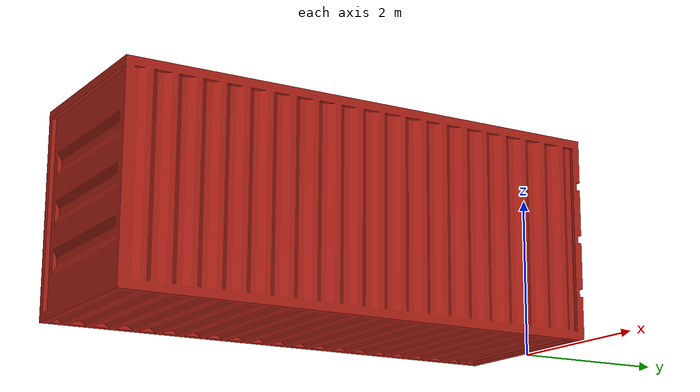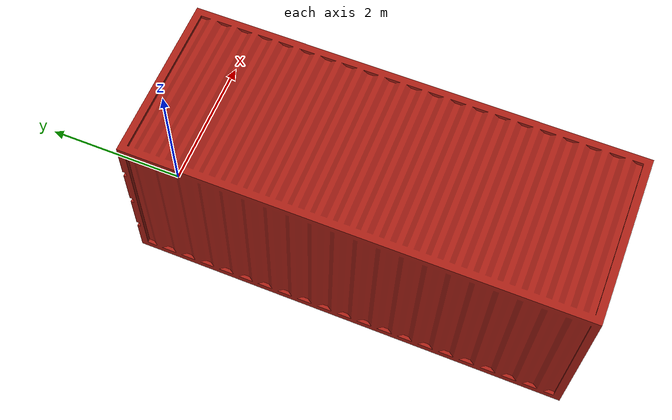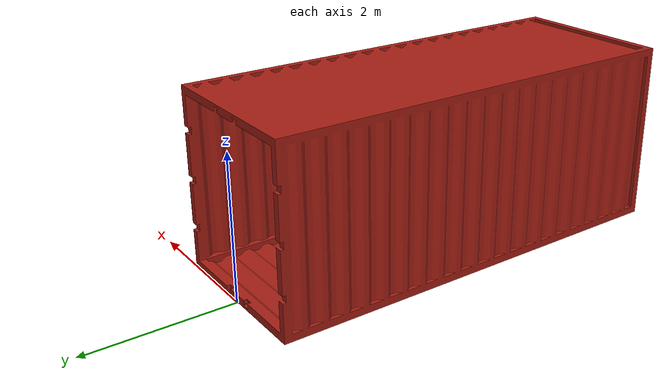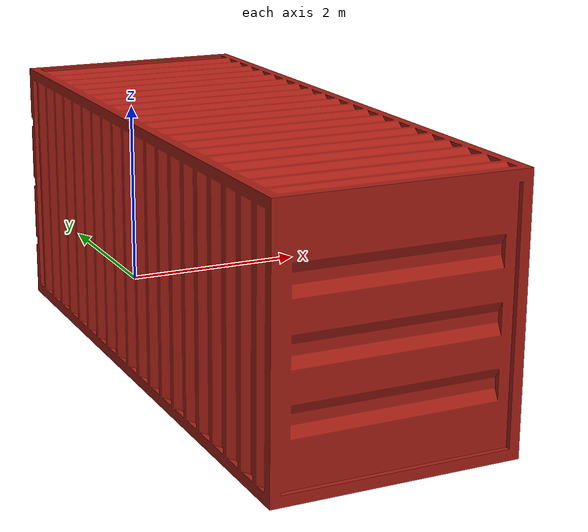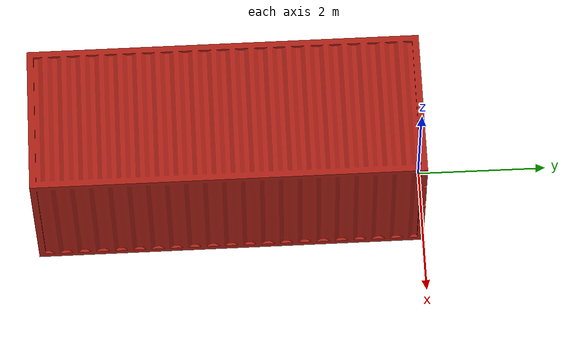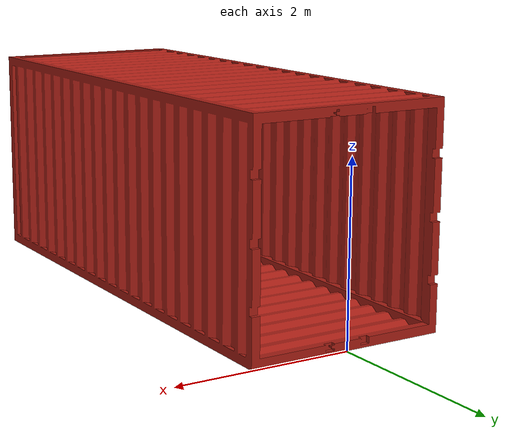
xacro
<?xml version="1.0" ?>

<robot name="red_container" xmlns:xacro="http://www.ros.org/wiki/xacro">

  <link name="base_footprint"/>

  <link name="base_link">
   <inertial>
    <origin xyz="0 -3.0 1.3" rpy="0 0 0"/>
     <xacro:box_inertia mass="20" x="2.3" y="6.0" z="2.6"/>
    <mass value= "20"/>
    </inertial>

    <collision>
      <origin rpy="0 0 0" xyz="0 0 0"/>
      <geometry>
        <mesh
          filename="$(find forklift_simulator)/urdf/red_container/meshes/red_container_box.dae" />
      </geometry>
    </collision>
    <visual>
      <origin rpy="0 0 0" xyz="0 0 0"/>
      <geometry>
        <mesh
        filename="$(find forklift_simulator)/urdf/red_container/meshes/red_container_box.dae" />
      </geometry>
    </visual>
  </link>

  <joint name="base_joint" type="fixed">
    <parent link="base_footprint" />
    <child link="base_link" />
    <origin xyz="0.0 0 0.010" rpy="0 0 0" />
    <axis xyz="0 0 1" />
  </joint>

</robot>
